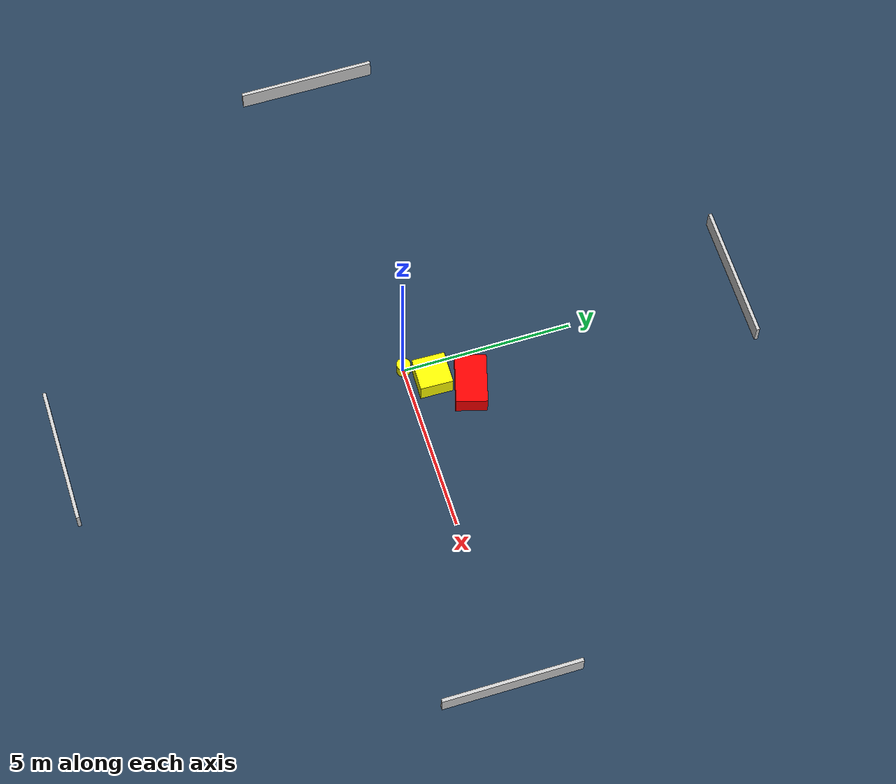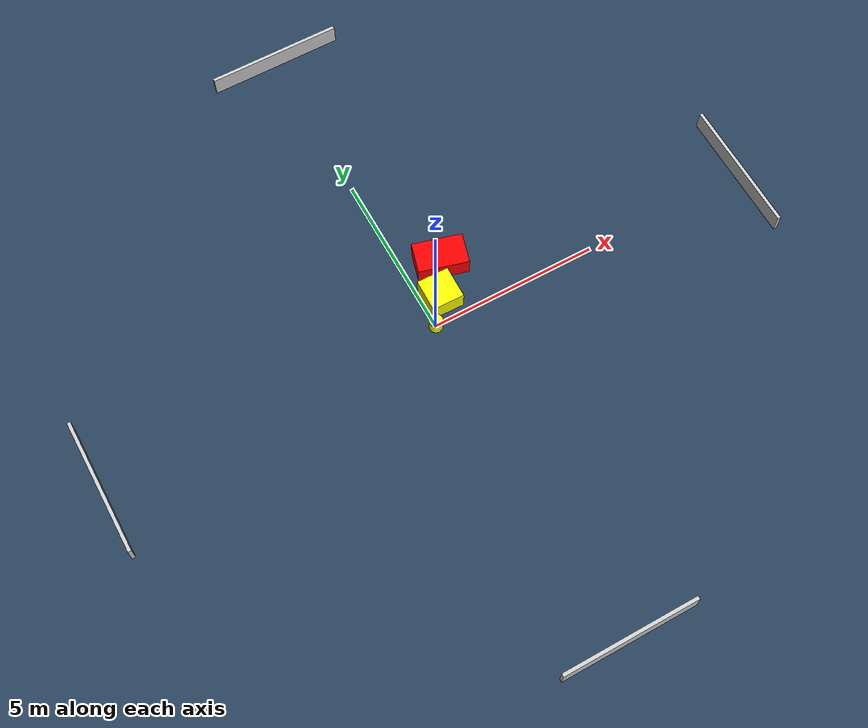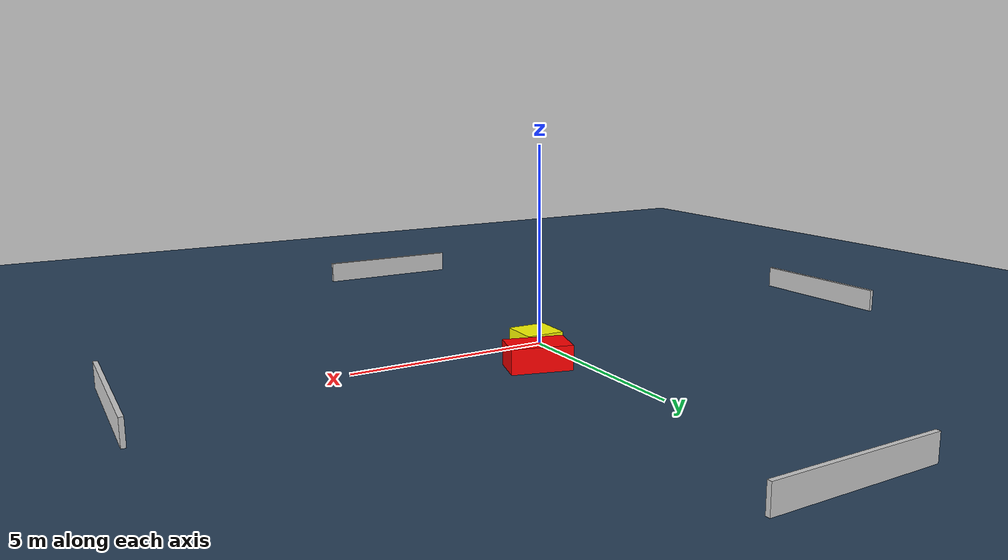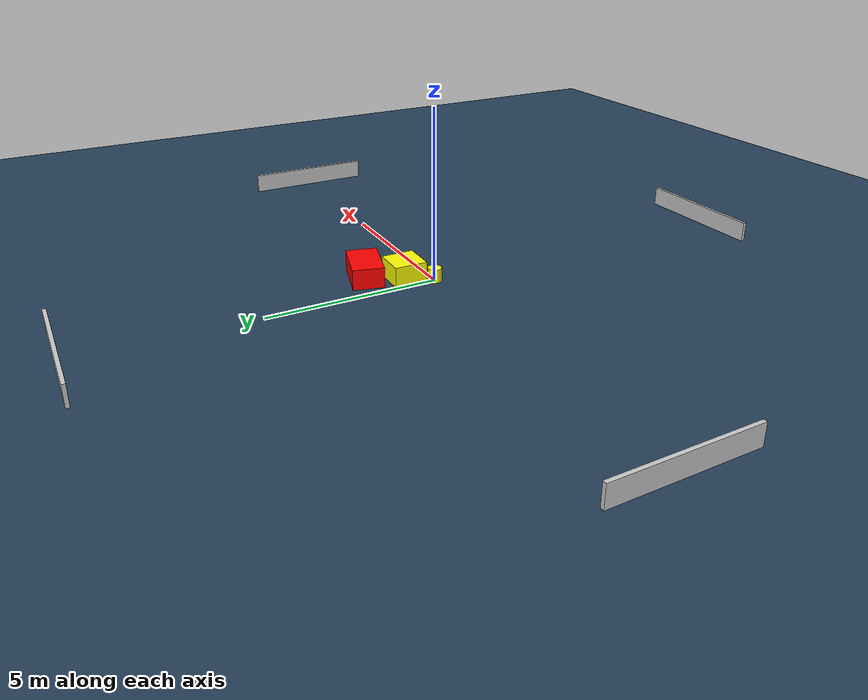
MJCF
<?xml version="1.0" ?>
<mujoco model="generated_environment">
  <option timestep="0.01" integrator="RK4" cone="elliptic"/>
  <default>
    <geom density="1"/>
  </default>
  <asset>
    <texture builtin="gradient" height="3072" name="skybox" rgb1="0.3 0.5 0.7" rgb2="0 0 0" type="skybox" width="512"/>
    <texture builtin="checker" height="300" name="groundplane" rgb1="0.2 0.3 0.4" rgb2="0.1 0.2 0.3" type="2d" width="300"/>
    <material name="groundplane" reflectance="0.2" texrepeat="5 5" texture="groundplane"/>
  </asset>
  <worldbody>
    <light dir="0 0 -1" directional="true" pos="0 0 1.5"/>
    <geom condim="3" friction="0.5 0.005 0.001" material="groundplane" name="floor" pos="0 0 0" size="0 0 0.05" type="plane"/>
    <body name="walls">
      <geom name="wall_1" condim="4" pos="-10.0 0.0 0.3" rgba="0.800000011920929 0.800000011920929 0.800000011920929 1.0" size="0.05 2.0 0.3" type="box"/>
      <geom name="wall_2" condim="4" pos="10.0 0.0 0.3" rgba="0.800000011920929 0.800000011920929 0.800000011920929 1.0" size="0.05 2.0 0.3" type="box"/>
      <geom name="wall_3" condim="4" pos="0.0 -10.0 0.3" rgba="0.800000011920929 0.800000011920929 0.800000011920929 1.0" size="2.0 0.05 0.3" type="box"/>
      <geom name="wall_4" condim="4" pos="0.0 10.0 0.3" rgba="0.800000011920929 0.800000011920929 0.800000011920929 1.0" size="2.0 0.05 0.3" type="box"/>
    </body>
    <body name="robot">
      <joint name="joint_x" type="slide" pos="0 0 0" axis="1 0 0"/>
      <joint name="joint_y" type="slide" pos="0 0 0" axis="0 1 0"/>
      <geom name="robot" type="cylinder" pos="0.0 0.0 0.2" size="0.2 0.2 0.0" mass="5.0" friction="1.0 0.005 0.0001" condim="4" rgba="1.0 1.0 0.0 1.0"/>
    </body>
    <body name="obstacle_1_movable">
      <geom name="obstacle_1_movable" condim="4" pos="0.529485492854857 0.6980882669841637 0.3" euler="0 0 358.79842906863064" friction="0.0 0.005 0.001" rgba="1.0 1.0 0.0 1.0" size="0.47450555926606675 0.4803213527534913 0.3" type="box" mass="0.1"/>
      <joint type="free"/>
    </body>
    <body name="obstacle_2_static">
      <geom name="obstacle_2_static" condim="4" pos="1.0729706832287569 1.6772907937816246 0.3" euler="0 0 74.1680866978877" friction="0.0 0.005 0.001" rgba="1.0 0.0 0.0 1.0" size="0.45345531475297157 0.7347246170372514 0.3" type="box"/>
    </body>
  </worldbody>
  <actuator>
    <motor name="actuator_x" joint="joint_x" gear="1" ctrlrange="-1 1"/>
    <motor name="actuator_y" joint="joint_y" gear="1" ctrlrange="-1 1"/>
  </actuator>
</mujoco>
